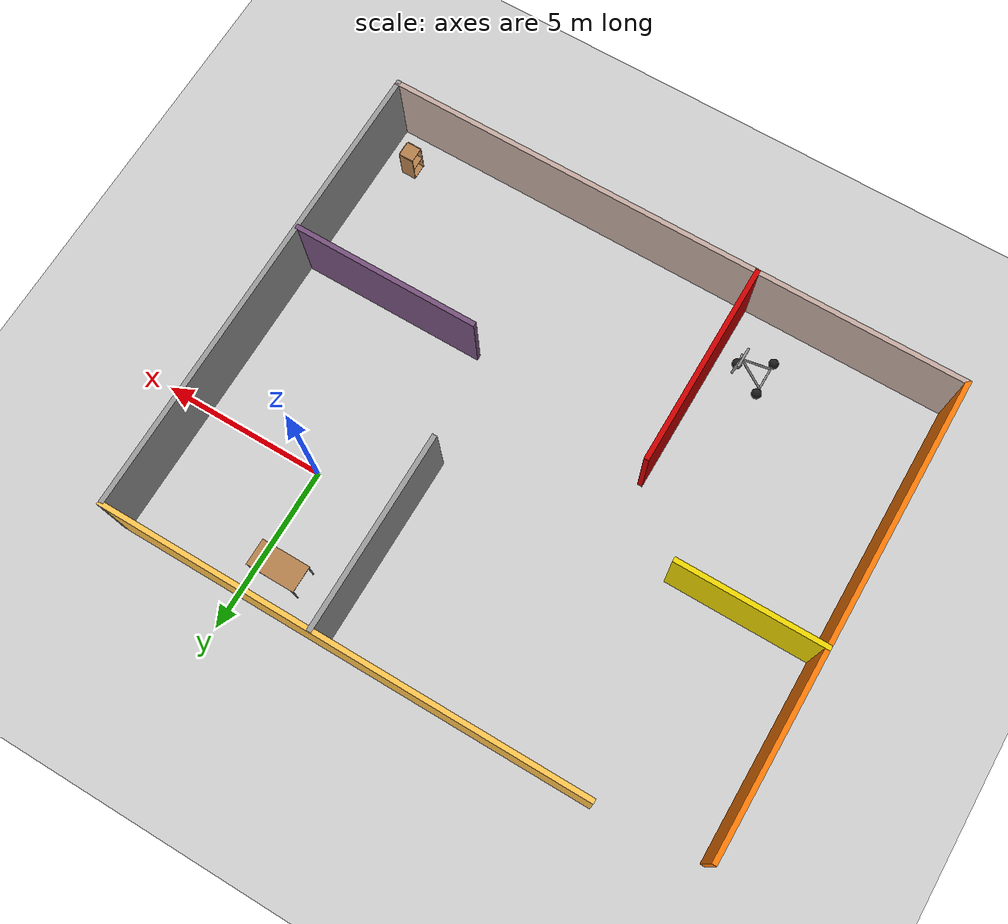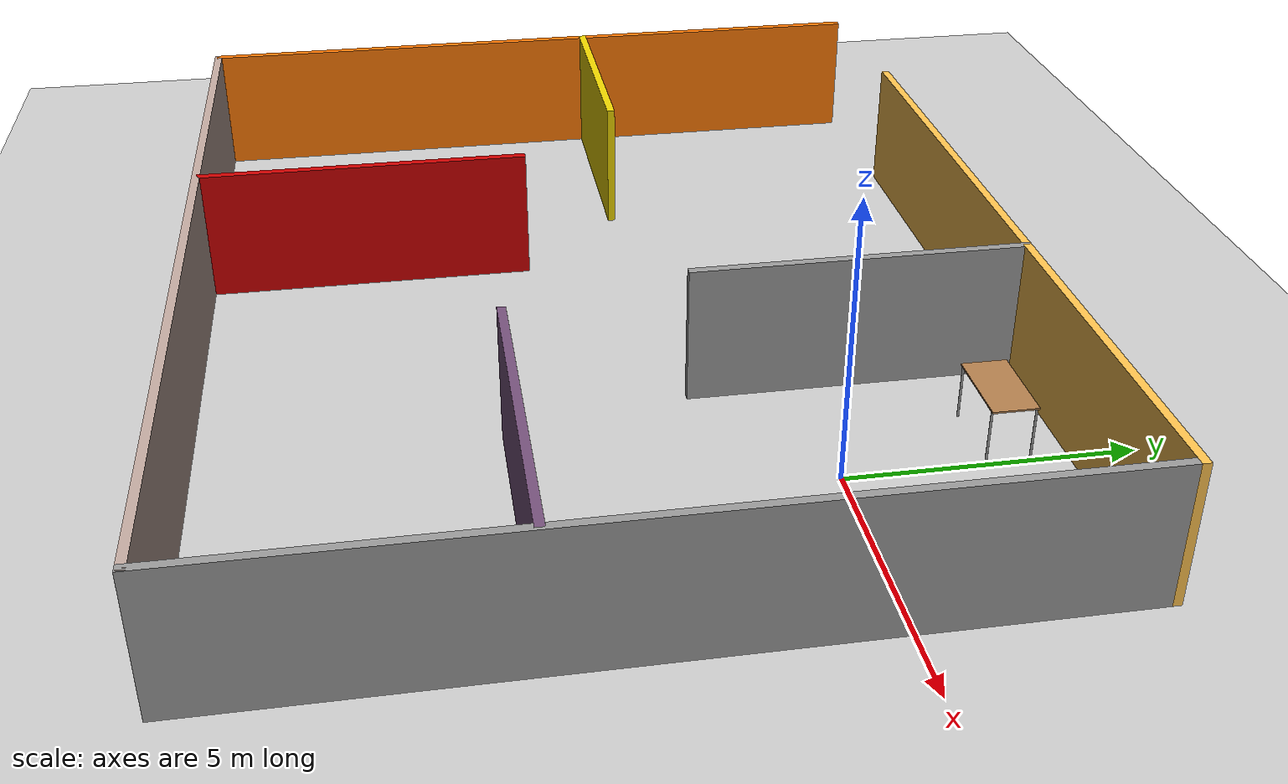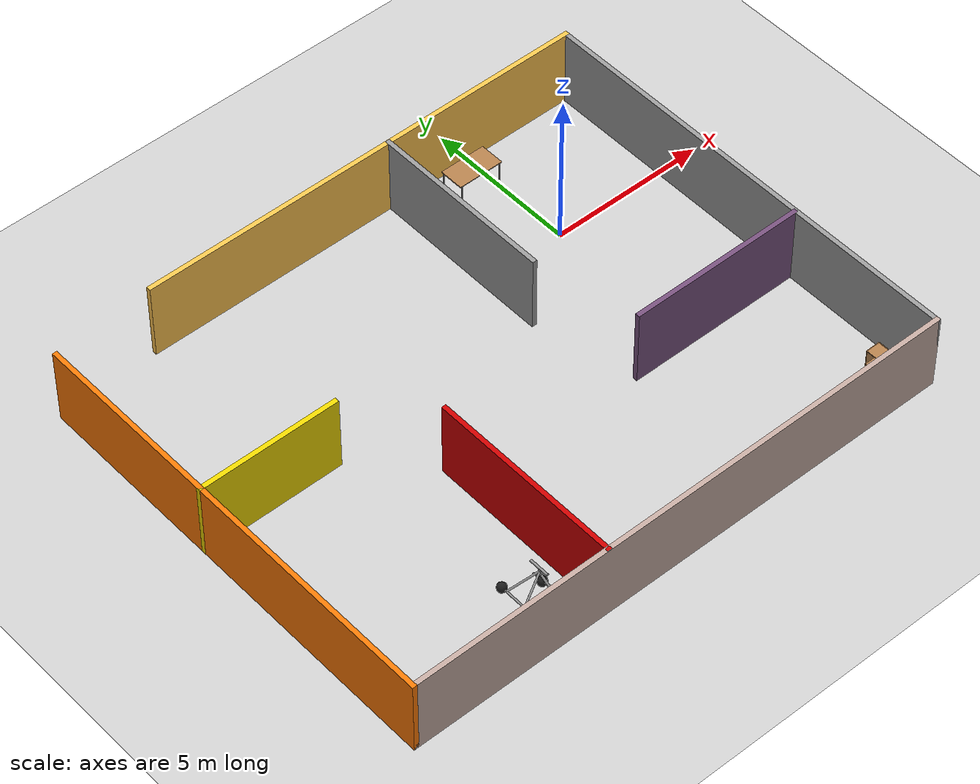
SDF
<sdf version="1.6">
 <world name="default">
  <light name="sun" type="directional">
   <pose>0 0 10 0 -0 0</pose>
   <diffuse>0.8 0.8 0.8 1</diffuse>
   <specular>0.2 0.2 0.2 1</specular>
   <attenuation>
    <range>1000</range>
    <constant>0.9</constant>
    <linear>0.01</linear>
    <quadratic>0.001</quadratic>
   </attenuation>
   <direction>-0.5 0.1 -0.9</direction>
  </light>
  <model name="ground_plane">
   <static>1</static>
   <link name="link">
    <collision name="collision">
     <geometry><plane><normal>0 0 1</normal><size>100 100</size></plane></geometry>
     <surface>
      <contact><collide_bitmask>65535</collide_bitmask></contact>
      <friction><ode><mu>100</mu><mu2>50</mu2></ode></friction>
     </surface>
    </collision>
    <visual name="visual">
     <cast_shadows>0</cast_shadows>
     <geometry><plane><normal>0 0 1</normal><size>100 100</size></plane></geometry>
     <material>
      <script><uri>file://media/materials/scripts/gazebo.material</uri><name>Gazebo/Grey</name></script>
     </material>
    </visual>
   </link>
  </model>
  <gravity>0 0 -9.8</gravity>
  <magnetic_field>6e-06 2.3e-05 -4.2e-05</magnetic_field>
  <atmosphere type="adiabatic"/>
  <physics name="default_physics" default="0" type="ode">
   <max_step_size>0.001</max_step_size>
   <real_time_factor>1</real_time_factor>
   <real_time_update_rate>1000</real_time_update_rate>
  </physics>
  <scene><ambient>0.4 0.4 0.4 1</ambient><background>0.7 0.7 0.7 1</background><shadows>1</shadows></scene>
  <audio><device>default</device></audio>
  <spherical_coordinates>
   <surface_model>EARTH_WGS84</surface_model>
   <latitude_deg>0</latitude_deg>
   <longitude_deg>0</longitude_deg>
   <elevation>0</elevation>
   <heading_deg>0</heading_deg>
  </spherical_coordinates>
  <model name="mapping_world">
   <pose>-5.2452 -3.25646 0 0 -0 0</pose>
   <link name="Wall_11">
    <collision name="Wall_11_Collision">
     <geometry><box><size>4.5 0.15 2.5</size></box></geometry>
     <pose>0 0 1.25 0 -0 0</pose>
    </collision>
    <visual name="Wall_11_Visual">
     <pose>0 0 1.25 0 -0 0</pose>
     <geometry><box><size>4.5 0.15 2.5</size></box></geometry>
     <material>
      <script><uri>file://media/materials/scripts/gazebo.material</uri><name>Gazebo/Grey</name></script>
      <ambient>0.929412 0.831373 0 1</ambient>
     </material>
     <meta><layer>0</layer></meta>
    </visual>
    <pose>-6.75 0.967903 0 0 -0 0</pose>
   </link>
   <link name="Wall_15">
    <collision name="Wall_15_Collision">
     <geometry><box><size>6 0.15 2.5</size></box></geometry>
     <pose>0 0 1.25 0 -0 0</pose>
    </collision>
    <visual name="Wall_15_Visual">
     <pose>0 0 1.25 0 -0 0</pose>
     <geometry><box><size>6 0.15 2.5</size></box></geometry>
     <material>
      <script><uri>file://media/materials/scripts/gazebo.material</uri><name>Gazebo/Grey</name></script>
      <ambient>1 1 1 1</ambient>
     </material>
     <meta><layer>0</layer></meta>
    </visual>
    <pose>2.47633 4.23671 0 0 -0 -1.5708</pose>
   </link>
   <link name="Wall_17">
    <collision name="Wall_17_Collision">
     <geometry><box><size>5.75 0.15 2.5</size></box></geometry>
     <pose>0 0 1.25 0 -0 0</pose>
    </collision>
    <visual name="Wall_17_Visual">
     <pose>0 0 1.25 0 -0 0</pose>
     <geometry><box><size>5.75 0.15 2.5</size></box></geometry>
     <material>
      <script><uri>file://media/materials/scripts/gazebo.material</uri><name>Gazebo/Grey</name></script>
      <ambient>0.458824 0.313726 0.482353 1</ambient>
     </material>
     <meta><layer>0</layer></meta>
    </visual>
    <pose>6.06739 -1.95147 0 0 -0 3.14159</pose>
   </link>
   <link name="Wall_4">
    <collision name="Wall_4_Collision">
     <geometry><box><size>14.25 0.15 2.5</size></box></geometry>
     <pose>0 0 1.25 0 -0 0</pose>
    </collision>
    <visual name="Wall_4_Visual">
     <pose>0 0 1.25 0 -0 0</pose>
     <geometry><box><size>14.25 0.15 2.5</size></box></geometry>
     <material>
      <script><uri>file://media/materials/scripts/gazebo.material</uri><name>Gazebo/Grey</name></script>
      <ambient>0.996078 0.47451 0.0196078 1</ambient>
     </material>
     <meta><layer>0</layer></meta>
    </visual>
    <pose>-8.925 -0.125 0 0 -0 -1.5708</pose>
   </link>
   <link name="Wall_5">
    <collision name="Wall_5_Collision">
     <geometry><box><size>18 0.15 2.5</size></box></geometry>
     <pose>0 0 1.25 0 -0 0</pose>
    </collision>
    <visual name="Wall_5_Visual">
     <pose>0 0 1.25 0 -0 0</pose>
     <geometry><box><size>18 0.15 2.5</size></box></geometry>
     <material>
      <script><uri>file://media/materials/scripts/gazebo.material</uri><name>Gazebo/Grey</name></script>
      <ambient>0.760784 0.662745 0.627451 1</ambient>
     </material>
     <meta><layer>0</layer></meta>
    </visual>
    <pose>-0 -7.175 0 0 -0 0</pose>
   </link>
   <link name="Wall_6">
    <collision name="Wall_6_Collision">
     <geometry><box><size>14.5 0.15 2.5</size></box></geometry>
     <pose>0 0 1.25 0 -0 0</pose>
    </collision>
    <visual name="Wall_6_Visual">
     <pose>0 0 1.25 0 -0 0</pose>
     <geometry><box><size>14.5 0.15 2.5</size></box></geometry>
     <material>
      <script><uri>file://media/materials/scripts/gazebo.material</uri><name>Gazebo/Grey</name></script>
      <ambient>0 0 0 1</ambient>
     </material>
     <meta><layer>0</layer></meta>
    </visual>
    <pose>8.925 -0 0 0 -0 1.5708</pose>
   </link>
   <link name="Wall_7">
    <collision name="Wall_7_Collision">
     <geometry><box><size>14.75 0.15 2.5</size></box></geometry>
     <pose>0 0 1.25 0 -0 0</pose>
    </collision>
    <visual name="Wall_7_Visual">
     <pose>0 0 1.25 0 -0 0</pose>
     <geometry><box><size>14.75 0.15 2.5</size></box></geometry>
     <material>
      <script><uri>file://media/materials/scripts/gazebo.material</uri><name>Gazebo/Grey</name></script>
      <ambient>1 0.764706 0.305882 1</ambient>
     </material>
     <meta><layer>0</layer></meta>
    </visual>
    <pose>1.625 7.175 0 0 -0 3.14159</pose>
   </link>
   <link name="Wall_9">
    <collision name="Wall_9_Collision">
     <geometry><box><size>6.25 0.15 2.5</size></box></geometry>
     <pose>0 0 1.25 0 -0 0</pose>
    </collision>
    <visual name="Wall_9_Visual">
     <pose>0 0 1.25 0 -0 0</pose>
     <geometry><box><size>6.25 0.15 2.5</size></box></geometry>
     <material>
      <script><uri>file://media/materials/scripts/gazebo.material</uri><name>Gazebo/Grey</name></script>
      <ambient>0.8 0 0 1</ambient>
     </material>
     <meta><layer>0</layer></meta>
    </visual>
    <pose>-2.61284 -4.109 0 0 -0 1.5708</pose>
   </link>
   <static>1</static>
  </model>
  <model name="table">
   <static>1</static>
   <link name="link">
    <collision name="surface">
     <pose>0 0 1 0 -0 0</pose>
     <geometry><box><size>1.5 0.8 0.03</size></box></geometry>
     <surface><friction><ode><mu>0.6</mu><mu2>0.6</mu2></ode></friction></surface>
    </collision>
    <visual name="visual1">
     <pose>0 0 1 0 -0 0</pose>
     <geometry><box><size>1.5 0.8 0.03</size></box></geometry>
     <material>
      <script><uri>file://media/materials/scripts/gazebo.material</uri><name>Gazebo/Wood</name></script>
     </material>
    </visual>
    <collision name="front_left_leg">
     <pose>0.68 0.38 0.5 0 -0 0</pose>
     <geometry><cylinder><radius>0.02</radius><length>1</length></cylinder></geometry>
    </collision>
    <visual name="front_left_leg">
     <pose>0.68 0.38 0.5 0 -0 0</pose>
     <geometry><cylinder><radius>0.02</radius><length>1</length></cylinder></geometry>
     <material>
      <script><uri>file://media/materials/scripts/gazebo.material</uri><name>Gazebo/Grey</name></script>
     </material>
    </visual>
    <collision name="front_right_leg">
     <pose>0.68 -0.38 0.5 0 -0 0</pose>
     <geometry><cylinder><radius>0.02</radius><length>1</length></cylinder></geometry>
    </collision>
    <visual name="front_right_leg">
     <pose>0.68 -0.38 0.5 0 -0 0</pose>
     <geometry><cylinder><radius>0.02</radius><length>1</length></cylinder></geometry>
     <material>
      <script><uri>file://media/materials/scripts/gazebo.material</uri><name>Gazebo/Grey</name></script>
     </material>
    </visual>
    <collision name="back_right_leg">
     <pose>-0.68 -0.38 0.5 0 -0 0</pose>
     <geometry><cylinder><radius>0.02</radius><length>1</length></cylinder></geometry>
    </collision>
    <visual name="back_right_leg">
     <pose>-0.68 -0.38 0.5 0 -0 0</pose>
     <geometry><cylinder><radius>0.02</radius><length>1</length></cylinder></geometry>
     <material>
      <script><uri>file://media/materials/scripts/gazebo.material</uri><name>Gazebo/Grey</name></script>
     </material>
    </visual>
    <collision name="back_left_leg">
     <pose>-0.68 0.38 0.5 0 -0 0</pose>
     <geometry><cylinder><radius>0.02</radius><length>1</length></cylinder></geometry>
    </collision>
    <visual name="back_left_leg">
     <pose>-0.68 0.38 0.5 0 -0 0</pose>
     <geometry><cylinder><radius>0.02</radius><length>1</length></cylinder></geometry>
     <material>
      <script><uri>file://media/materials/scripts/gazebo.material</uri><name>Gazebo/Grey</name></script>
     </material>
    </visual>
   </link>
   <pose>-0.751724 2.8301 0 0 -0 0</pose>
  </model>
  <model name="cabinet">
   <static>1</static>
   <link name="cabinet_bottom_plate">
    <inertial>
     <pose>0 0 -1 0 -0 0</pose>
     <inertia><ixx>2.05</ixx><ixy>0</ixy><ixz>0</ixz><iyy>2.05</iyy><iyz>0</iyz><izz>2.05</izz></inertia>
     <mass>25</mass>
    </inertial>
    <collision name="cabinet_bottom_plate_geom">
     <pose>0 0 0.01 0 -0 0</pose>
     <geometry><box><size>0.45 0.45 0.02</size></box></geometry>
    </collision>
    <visual name="cabinet_bottom_plate_geom_visual">
     <pose>0 0 0.01 0 -0 0</pose>
     <geometry><box><size>0.45 0.45 0.02</size></box></geometry>
     <material>
      <script><uri>file://media/materials/scripts/gazebo.material</uri><name>Gazebo/Wood</name></script>
     </material>
    </visual>
    <collision name="cabinet_bottom_plate_geom_cabinet_back_plate">
     <pose>0.235 0 0.51 0 -0 0</pose>
     <geometry><box><size>0.02 0.45 1.02</size></box></geometry>
    </collision>
    <visual name="cabinet_bottom_plate_geom_cabinet_back_plate_visual">
     <pose>0.235 0 0.51 0 -0 0</pose>
     <geometry><box><size>0.02 0.45 1.02</size></box></geometry>
     <material>
      <script><uri>file://media/materials/scripts/gazebo.material</uri><name>Gazebo/Wood</name></script>
     </material>
    </visual>
    <collision name="cabinet_bottom_plate_geom_cabinet_left_plate">
     <pose>0 0.235 0.51 0 -0 0</pose>
     <geometry><box><size>0.45 0.02 1.02</size></box></geometry>
    </collision>
    <visual name="cabinet_bottom_plate_geom_cabinet_left_plate_visual">
     <pose>0 0.235 0.51 0 -0 0</pose>
     <geometry><box><size>0.45 0.02 1.02</size></box></geometry>
     <material>
      <script><uri>file://media/materials/scripts/gazebo.material</uri><name>Gazebo/Wood</name></script>
     </material>
    </visual>
    <collision name="cabinet_bottom_plate_geom_cabinet_middle_plate">
     <pose>0 0 0.51 0 -0 0</pose>
     <geometry><box><size>0.45 0.45 0.02</size></box></geometry>
    </collision>
    <visual name="cabinet_bottom_plate_geom_cabinet_middle_plate_visual">
     <pose>0 0 0.51 0 -0 0</pose>
     <geometry><box><size>0.45 0.45 0.02</size></box></geometry>
     <material>
      <script><uri>file://media/materials/scripts/gazebo.material</uri><name>Gazebo/Wood</name></script>
     </material>
    </visual>
    <collision name="cabinet_bottom_plate_geom_cabinet_right_plate">
     <pose>0 -0.235 0.51 0 -0 0</pose>
     <geometry><box><size>0.45 0.02 1.02</size></box></geometry>
    </collision>
    <visual name="cabinet_bottom_plate_geom_cabinet_right_plate_visual">
     <pose>0 -0.235 0.51 0 -0 0</pose>
     <geometry><box><size>0.45 0.02 1.02</size></box></geometry>
     <material>
      <script><uri>file://media/materials/scripts/gazebo.material</uri><name>Gazebo/Wood</name></script>
     </material>
    </visual>
    <collision name="cabinet_bottom_plate_geom_cabinet_top_plate">
     <pose>0 0 1.01 0 -0 0</pose>
     <geometry><box><size>0.45 0.45 0.02</size></box></geometry>
    </collision>
    <visual name="cabinet_bottom_plate_geom_cabinet_top_plate_visual">
     <pose>0 0 1.01 0 -0 0</pose>
     <geometry><box><size>0.45 0.45 0.02</size></box></geometry>
     <material>
      <script><uri>file://media/materials/scripts/gazebo.material</uri><name>Gazebo/Wood</name></script>
     </material>
    </visual>
   </link>
   <pose>2.77889 -9.37842 0 0 -0 0</pose>
  </model>
  <model name="trisphere_cycle">
   <link name="frame">
    <pose>-0.408559 0 0.385023 0 -0.522021 0</pose>
    <inertial>
     <mass>10</mass>
     <inertia><ixx>0.228</ixx><iyy>0.743521</iyy><izz>0.965521</izz><ixy>0</ixy><ixz>0</ixz><iyz>0</iyz></inertia>
    </inertial>
    <collision name="axle_collision">
     <pose>-0.471335 0 0 1.5708 -0 0</pose>
     <geometry><cylinder><length>1.03923</length><radius>0.03</radius></cylinder></geometry>
    </collision>
    <visual name="axle_visual">
     <pose>-0.471335 0 0 1.5708 -0 0</pose>
     <geometry><cylinder><length>1.03923</length><radius>0.03</radius></cylinder></geometry>
     <material>
      <script><uri>file://media/materials/scripts/gazebo.material</uri><name>Gazebo/Grey</name></script>
     </material>
    </visual>
    <collision name="frame_left_collision">
     <pose>0 0.171552 0 -2.79253 1.57079 3.14159</pose>
     <geometry><cylinder><length>1.00317</length><radius>0.03</radius></cylinder></geometry>
    </collision>
    <visual name="frame_left_visual">
     <pose>0 0.171552 0 -2.79253 1.57079 3.14159</pose>
     <geometry><cylinder><length>1.00317</length><radius>0.03</radius></cylinder></geometry>
     <material>
      <script><uri>file://media/materials/scripts/gazebo.material</uri><name>Gazebo/Grey</name></script>
     </material>
    </visual>
    <collision name="frame_right_collision">
     <pose>0 -0.171552 0 2.79253 1.57079 -3.14159</pose>
     <geometry><cylinder><length>1.00317</length><radius>0.03</radius></cylinder></geometry>
    </collision>
    <visual name="frame_right_visual">
     <pose>0 -0.171552 0 2.79253 1.57079 -3.14159</pose>
     <geometry><cylinder><length>1.00317</length><radius>0.03</radius></cylinder></geometry>
     <material>
      <script><uri>file://media/materials/scripts/gazebo.material</uri><name>Gazebo/Grey</name></script>
     </material>
    </visual>
   </link>
   <link name="fork">
    <pose>0.041441 0 0.385023 0 -0.174533 0</pose>
    <inertial>
     <mass>3</mass>
     <inertia>
      <ixx>0.158203</ixx>
      <iyy>0.0583594</iyy>
      <izz>0.102656</izz>
      <ixy>0</ixy>
      <ixz>0</ixz>
      <iyz>0</iyz>
     </inertia>
    </inertial>
    <collision name="handlebars_collision">
     <pose>0 0 0.397748 1.5708 -0 0</pose>
     <geometry><cylinder><length>0.636396</length><radius>0.0375</radius></cylinder></geometry>
    </collision>
    <visual name="handlebars_visual">
     <pose>0 0 0.397748 1.5708 -0 0</pose>
     <geometry><cylinder><length>0.636396</length><radius>0.0375</radius></cylinder></geometry>
     <material>
      <script><uri>file://media/materials/scripts/gazebo.material</uri><name>Gazebo/Grey</name></script>
     </material>
    </visual>
    <collision name="headtube_collision">
     <pose>0 0 0.238649 0 -0 0</pose>
     <geometry><cylinder><length>0.318198</length><radius>0.0375</radius></cylinder></geometry>
    </collision>
    <visual name="headtube_visual">
     <pose>0 0 0.238649 0 -0 0</pose>
     <geometry><cylinder><length>0.318198</length><radius>0.0375</radius></cylinder></geometry>
     <material>
      <script><uri>file://media/materials/scripts/gazebo.material</uri><name>Gazebo/Grey</name></script>
     </material>
    </visual>
    <collision name="spindle_collision">
     <pose>0 0 -0.238649 1.5708 -0 0</pose>
     <geometry><cylinder><length>0.636396</length><radius>0.015</radius></cylinder></geometry>
    </collision>
    <visual name="spindle_visual">
     <pose>0 0 -0.238649 1.5708 -0 0</pose>
     <geometry><cylinder><length>0.636396</length><radius>0.015</radius></cylinder></geometry>
     <material>
      <script><uri>file://media/materials/scripts/gazebo.material</uri><name>Gazebo/Grey</name></script>
     </material>
    </visual>
    <collision name="fork_left_collision">
     <pose>0 0.159099 -0.07955 0.785398 -0 0</pose>
     <geometry><cylinder><length>0.45</length><radius>0.0375</radius></cylinder></geometry>
    </collision>
    <visual name="fork_left_visual">
     <pose>0 0.159099 -0.07955 0.785398 -0 0</pose>
     <geometry><cylinder><length>0.45</length><radius>0.0375</radius></cylinder></geometry>
     <material>
      <script><uri>file://media/materials/scripts/gazebo.material</uri><name>Gazebo/Grey</name></script>
     </material>
    </visual>
    <collision name="fork_right_collision">
     <pose>0 -0.159099 -0.07955 -0.785398 0 0</pose>
     <geometry><cylinder><length>0.45</length><radius>0.0375</radius></cylinder></geometry>
    </collision>
    <visual name="fork_right_visual">
     <pose>0 -0.159099 -0.07955 -0.785398 0 0</pose>
     <geometry><cylinder><length>0.45</length><radius>0.0375</radius></cylinder></geometry>
     <material>
      <script><uri>file://media/materials/scripts/gazebo.material</uri><name>Gazebo/Grey</name></script>
     </material>
    </visual>
   </link>
   <link name="wheel_front">
    <pose>0.082882 0 0.15 0 -0 0</pose>
    <inertial>
     <mass>0.5</mass>
     <inertia><ixx>0.0045</ixx><iyy>0.0045</iyy><izz>0.0045</izz><ixy>0</ixy><ixz>0</ixz><iyz>0</iyz></inertia>
    </inertial>
    <collision name="collision">
     <geometry><sphere><radius>0.15</radius></sphere></geometry>
     <surface><contact><ode><kp>1e+08</kp><kd>1</kd><min_depth>0.0005</min_depth></ode></contact></surface>
    </collision>
    <visual name="visual">
     <geometry><sphere><radius>0.15</radius></sphere></geometry>
     <material>
      <script><uri>file://media/materials/scripts/gazebo.material</uri><name>Gazebo/Black</name></script>
     </material>
    </visual>
   </link>
   <joint name="wheel_front_steer" type="revolute">
    <parent>frame</parent>
    <child>fork</child>
    <axis>
     <xyz>0 0 1</xyz>
     <limit><lower>-0.959931</lower><upper>0.959931</upper></limit>
     <use_parent_model_frame>0</use_parent_model_frame>
     <dynamics><spring_reference>0</spring_reference><spring_stiffness>0</spring_stiffness></dynamics>
    </axis>
   </joint>
   <joint name="wheel_front_spin" type="revolute">
    <parent>fork</parent>
    <child>wheel_front</child>
    <axis>
     <xyz>0 1 0</xyz>
     <use_parent_model_frame>0</use_parent_model_frame>
     <limit><lower>-1e+16</lower><upper>1e+16</upper></limit>
     <dynamics><spring_reference>0</spring_reference><spring_stiffness>0</spring_stiffness></dynamics>
    </axis>
   </joint>
   <link name="wheel_rear_left">
    <pose>-0.817118 0.519615 0.15 0 -0 0</pose>
    <inertial>
     <mass>0.5</mass>
     <inertia><ixx>0.0045</ixx><iyy>0.0045</iyy><izz>0.0045</izz><ixy>0</ixy><ixz>0</ixz><iyz>0</iyz></inertia>
    </inertial>
    <collision name="collision">
     <geometry><sphere><radius>0.15</radius></sphere></geometry>
     <surface><contact><ode><kp>1e+08</kp><kd>1</kd><min_depth>0.0005</min_depth></ode></contact></surface>
    </collision>
    <visual name="visual">
     <geometry><sphere><radius>0.15</radius></sphere></geometry>
     <material>
      <script><uri>file://media/materials/scripts/gazebo.material</uri><name>Gazebo/Black</name></script>
     </material>
    </visual>
   </link>
   <joint name="wheel_rear_left_spin" type="revolute">
    <parent>frame</parent>
    <child>wheel_rear_left</child>
    <axis>
     <xyz>0 1 0</xyz>
     <use_parent_model_frame>0</use_parent_model_frame>
     <limit><lower>-1e+16</lower><upper>1e+16</upper></limit>
     <dynamics><spring_reference>0</spring_reference><spring_stiffness>0</spring_stiffness></dynamics>
    </axis>
   </joint>
   <link name="wheel_rear_right">
    <pose>-0.817118 -0.519615 0.15 0 -0 0</pose>
    <inertial>
     <mass>0.5</mass>
     <inertia><ixx>0.0045</ixx><iyy>0.0045</iyy><izz>0.0045</izz><ixy>0</ixy><ixz>0</ixz><iyz>0</iyz></inertia>
    </inertial>
    <collision name="collision">
     <geometry><sphere><radius>0.15</radius></sphere></geometry>
     <surface><contact><ode><kp>1e+08</kp><kd>1</kd><min_depth>0.0005</min_depth></ode></contact></surface>
    </collision>
    <visual name="visual">
     <geometry><sphere><radius>0.15</radius></sphere></geometry>
     <material>
      <script><uri>file://media/materials/scripts/gazebo.material</uri><name>Gazebo/Black</name></script>
     </material>
    </visual>
   </link>
   <joint name="wheel_rear_right_spin" type="revolute">
    <parent>frame</parent>
    <child>wheel_rear_right</child>
    <axis>
     <xyz>0 1 0</xyz>
     <use_parent_model_frame>0</use_parent_model_frame>
     <limit><lower>-1e+16</lower><upper>1e+16</upper></limit>
     <dynamics><spring_reference>0</spring_reference><spring_stiffness>0</spring_stiffness></dynamics>
    </axis>
   </joint>
   <pose>-8.57833 -8.73927 -0.000501 0 1e-06 -6.8e-05</pose>
  </model>
 </world>
</sdf>
